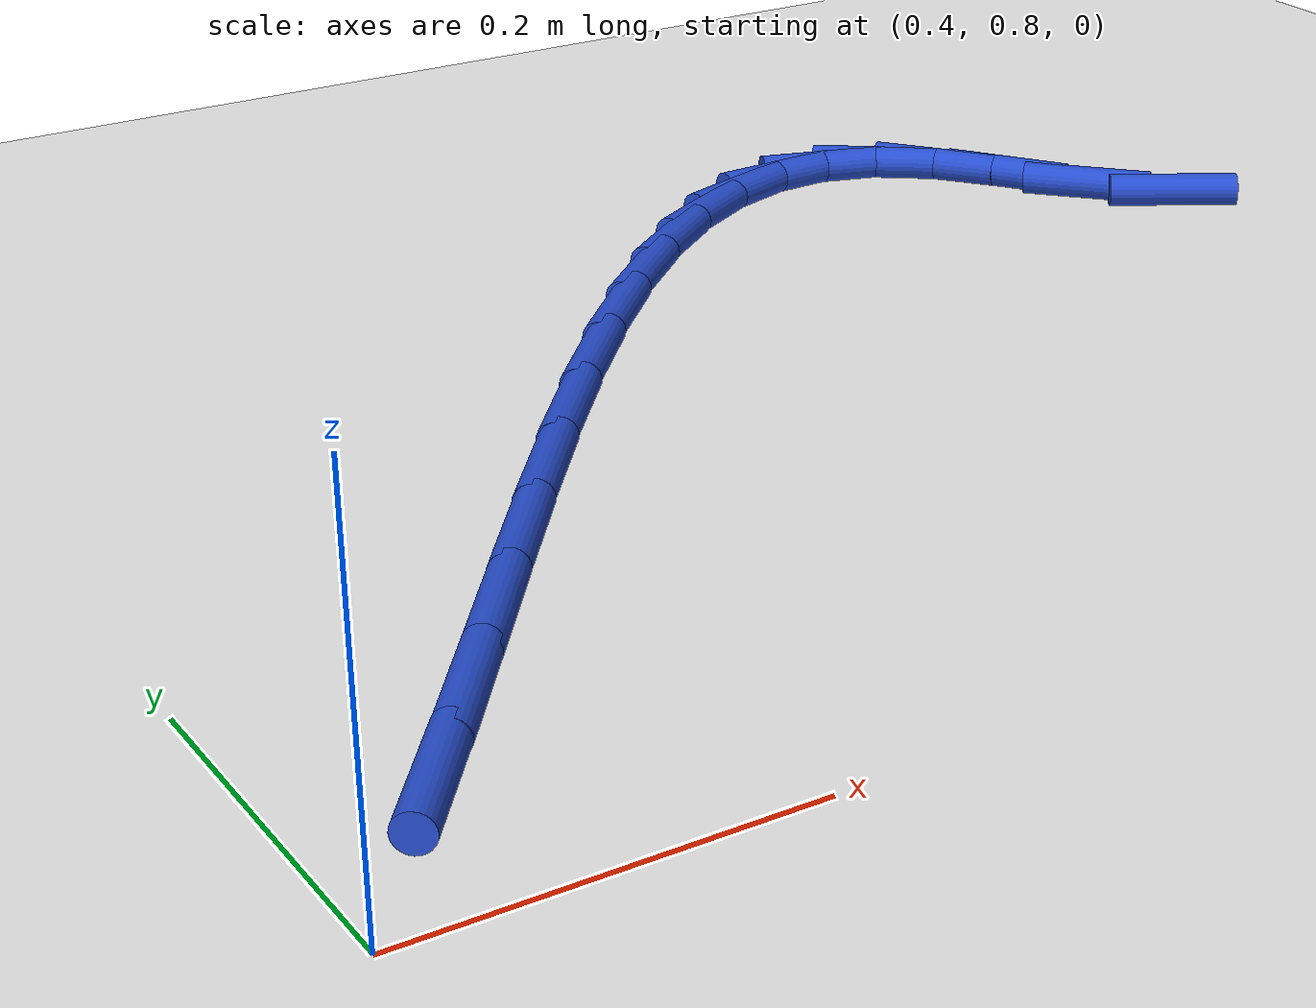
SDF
<sdf version="1.6">
 <world name="default">
  <model name="ground_plane">
   <static>1</static>
   <link name="link">
    <collision name="collision">
     <geometry><plane><normal>0 0 1</normal><size>100 100</size></plane></geometry>
     <surface><friction><ode><mu>100</mu><mu2>50</mu2></ode></friction></surface>
    </collision>
    <visual name="visual">
     <cast_shadows>0</cast_shadows>
     <geometry><plane><normal>0 0 1</normal><size>100 100</size></plane></geometry>
     <material>
      <script><uri>file://media/materials/scripts/gazebo.material</uri><name>Gazebo/WhiteGlow</name></script>
     </material>
    </visual>
   </link>
  </model>
  <model name="line">
   <link name="link_19">
    <pose>0.46492218971144633 0.8827234571510989 0.01 0 1.57 0.9239365346075642</pose>
    <collision name="collision">
     <geometry><cylinder><radius>0.01</radius><length>0.08</length></cylinder></geometry>
    </collision>
    <visual name="visual">
     <material>
      <script><name>Gazebo/Blue</name><uri>file://media/materials/scripts/gazebo.material</uri></script>
     </material>
     <geometry><cylinder><radius>0.01</radius><length>0.08</length></cylinder></geometry>
    </visual>
   </link>
   <link name="link_20">
    <pose>0.507810955171338 0.9395101219114486 0.01 0 1.57 0.932174153599378</pose>
    <collision name="collision">
     <geometry><cylinder><radius>0.01</radius><length>0.08</length></cylinder></geometry>
    </collision>
    <visual name="visual">
     <material>
      <script><name>Gazebo/Blue</name><uri>file://media/materials/scripts/gazebo.material</uri></script>
     </material>
     <geometry><cylinder><radius>0.01</radius><length>0.08</length></cylinder></geometry>
    </visual>
   </link>
   <link name="link_21">
    <pose>0.5513276226211673 0.9981259755392177 0.01 0 1.57 0.9330900064289085</pose>
    <collision name="collision">
     <geometry><cylinder><radius>0.01</radius><length>0.08</length></cylinder></geometry>
    </collision>
    <visual name="visual">
     <material>
      <script><name>Gazebo/Blue</name><uri>file://media/materials/scripts/gazebo.material</uri></script>
     </material>
     <geometry><cylinder><radius>0.01</radius><length>0.08</length></cylinder></geometry>
    </visual>
   </link>
   <link name="link_22">
    <pose>0.5952482342918994 1.057399278057417 0.01 0 1.57 0.9269539566968109</pose>
    <collision name="collision">
     <geometry><cylinder><radius>0.01</radius><length>0.08</length></cylinder></geometry>
    </collision>
    <visual name="visual">
     <material>
      <script><name>Gazebo/Blue</name><uri>file://media/materials/scripts/gazebo.material</uri></script>
     </material>
     <geometry><cylinder><radius>0.01</radius><length>0.08</length></cylinder></geometry>
    </visual>
   </link>
   <link name="link_23">
    <pose>0.6393488324145011 1.1161582894890594 0.01 0 1.57 0.9134040262255821</pose>
    <collision name="collision">
     <geometry><cylinder><radius>0.01</radius><length>0.08</length></cylinder></geometry>
    </collision>
    <visual name="visual">
     <material>
      <script><name>Gazebo/Blue</name><uri>file://media/materials/scripts/gazebo.material</uri></script>
     </material>
     <geometry><cylinder><radius>0.01</radius><length>0.08</length></cylinder></geometry>
    </visual>
   </link>
   <link name="link_24">
    <pose>0.6834054592199379 1.173231269857155 0.01 0 1.57 0.8913882123612406</pose>
    <collision name="collision">
     <geometry><cylinder><radius>0.01</radius><length>0.08</length></cylinder></geometry>
    </collision>
    <visual name="visual">
     <material>
      <script><name>Gazebo/Blue</name><uri>file://media/materials/scripts/gazebo.material</uri></script>
     </material>
     <geometry><cylinder><radius>0.01</radius><length>0.08</length></cylinder></geometry>
    </visual>
   </link>
   <link name="link_25">
    <pose>0.7271941569391759 1.2274464791847166 0.01 0 1.57 0.8589569287098184</pose>
    <collision name="collision">
     <geometry><cylinder><radius>0.01</radius><length>0.08</length></cylinder></geometry>
    </collision>
    <visual name="visual">
     <material>
      <script><name>Gazebo/Blue</name><uri>file://media/materials/scripts/gazebo.material</uri></script>
     </material>
     <geometry><cylinder><radius>0.01</radius><length>0.08</length></cylinder></geometry>
    </visual>
   </link>
   <link name="link_26">
    <pose>0.7704909678031808 1.2776321774947546 0.01 0 1.57 0.8128391091976263</pose>
    <collision name="collision">
     <geometry><cylinder><radius>0.01</radius><length>0.08</length></cylinder></geometry>
    </collision>
    <visual name="visual">
     <material>
      <script><name>Gazebo/Blue</name><uri>file://media/materials/scripts/gazebo.material</uri></script>
     </material>
     <geometry><cylinder><radius>0.01</radius><length>0.08</length></cylinder></geometry>
    </visual>
   </link>
   <link name="link_27">
    <pose>0.8130719340429191 1.3226166248102815 0.01 0 1.57 0.7476639512551123</pose>
    <collision name="collision">
     <geometry><cylinder><radius>0.01</radius><length>0.08</length></cylinder></geometry>
    </collision>
    <visual name="visual">
     <material>
      <script><name>Gazebo/Blue</name><uri>file://media/materials/scripts/gazebo.material</uri></script>
     </material>
     <geometry><cylinder><radius>0.01</radius><length>0.08</length></cylinder></geometry>
    </visual>
   </link>
   <link name="link_28">
    <pose>0.8547130978893562 1.3612280811543085 0.01 0 1.57 0.6546123008137925</pose>
    <collision name="collision">
     <geometry><cylinder><radius>0.01</radius><length>0.08</length></cylinder></geometry>
    </collision>
    <visual name="visual">
     <material>
      <script><name>Gazebo/Blue</name><uri>file://media/materials/scripts/gazebo.material</uri></script>
     </material>
     <geometry><cylinder><radius>0.01</radius><length>0.08</length></cylinder></geometry>
    </visual>
   </link>
   <link name="link_29">
    <pose>0.8951905015734587 1.3922948065498473 0.01 0 1.57 0.5194023976951444</pose>
    <collision name="collision">
     <geometry><cylinder><radius>0.01</radius><length>0.08</length></cylinder></geometry>
    </collision>
    <visual name="visual">
     <material>
      <script><name>Gazebo/Blue</name><uri>file://media/materials/scripts/gazebo.material</uri></script>
     </material>
     <geometry><cylinder><radius>0.01</radius><length>0.08</length></cylinder></geometry>
    </visual>
   </link>
   <link name="link_30">
    <pose>0.9342801873261919 1.4146450610199093 0.01 0 1.57 0.3210149081090921</pose>
    <collision name="collision">
     <geometry><cylinder><radius>0.01</radius><length>0.08</length></cylinder></geometry>
    </collision>
    <visual name="visual">
     <material>
      <script><name>Gazebo/Blue</name><uri>file://media/materials/scripts/gazebo.material</uri></script>
     </material>
     <geometry><cylinder><radius>0.01</radius><length>0.08</length></cylinder></geometry>
    </visual>
   </link>
   <link name="link_31">
    <pose>0.9717581973785224 1.4271071045875063 0.01 0 1.57 0.03931752774718461</pose>
    <collision name="collision">
     <geometry><cylinder><radius>0.01</radius><length>0.08</length></cylinder></geometry>
    </collision>
    <visual name="visual">
     <material>
      <script><name>Gazebo/Blue</name><uri>file://media/materials/scripts/gazebo.material</uri></script>
     </material>
     <geometry><cylinder><radius>0.01</radius><length>0.08</length></cylinder></geometry>
    </visual>
   </link>
   <link name="link_32">
    <pose>1.0074005739614154 1.4285091972756494 0.01 0 1.57 -0.3119461464083098</pose>
    <collision name="collision">
     <geometry><cylinder><radius>0.01</radius><length>0.08</length></cylinder></geometry>
    </collision>
    <visual name="visual">
     <material>
      <script><name>Gazebo/Blue</name><uri>file://media/materials/scripts/gazebo.material</uri></script>
     </material>
     <geometry><cylinder><radius>0.01</radius><length>0.08</length></cylinder></geometry>
    </visual>
   </link>
   <link name="link_33">
    <pose>1.0409833593058377 1.4176795991073508 0.01 0 1.57 -0.6588332465115055</pose>
    <collision name="collision">
     <geometry><cylinder><radius>0.01</radius><length>0.08</length></cylinder></geometry>
    </collision>
    <visual name="visual">
     <material>
      <script><name>Gazebo/Blue</name><uri>file://media/materials/scripts/gazebo.material</uri></script>
     </material>
     <geometry><cylinder><radius>0.01</radius><length>0.08</length></cylinder></geometry>
    </visual>
   </link>
   <link name="link_34">
    <pose>1.0722825956427549 1.3934465701056216 0.01 0 1.57 -0.9186454093857453</pose>
    <collision name="collision">
     <geometry><cylinder><radius>0.01</radius><length>0.08</length></cylinder></geometry>
    </collision>
    <visual name="visual">
     <material>
      <script><name>Gazebo/Blue</name><uri>file://media/materials/scripts/gazebo.material</uri></script>
     </material>
     <geometry><cylinder><radius>0.01</radius><length>0.08</length></cylinder></geometry>
    </visual>
   </link>
   <link name="link_35">
    <pose>1.1013827500937137 1.3553376058404263 0.01 0 1.57 -0.9775569772916918</pose>
    <collision name="collision">
     <geometry><cylinder><radius>0.01</radius><length>0.08</length></cylinder></geometry>
    </collision>
    <visual name="visual">
     <material>
      <script><name>Gazebo/Blue</name><uri>file://media/materials/scripts/gazebo.material</uri></script>
     </material>
     <geometry><cylinder><radius>0.01</radius><length>0.08</length></cylinder></geometry>
    </visual>
   </link>
   <link name="link_36">
    <pose>1.131684031639837 1.3103973791379775 0.01 0 1.57 -0.829667757174458</pose>
    <collision name="collision">
     <geometry><cylinder><radius>0.01</radius><length>0.08</length></cylinder></geometry>
    </collision>
    <visual name="visual">
     <material>
      <script><name>Gazebo/Blue</name><uri>file://media/materials/scripts/gazebo.material</uri></script>
     </material>
     <geometry><cylinder><radius>0.01</radius><length>0.08</length></cylinder></geometry>
    </visual>
   </link>
   <link name="link_37">
    <pose>1.1685401842341017 1.2701245244155892 0.01 0 1.57 -0.567876123459904</pose>
    <collision name="collision">
     <geometry><cylinder><radius>0.01</radius><length>0.08</length></cylinder></geometry>
    </collision>
    <visual name="visual">
     <material>
      <script><name>Gazebo/Blue</name><uri>file://media/materials/scripts/gazebo.material</uri></script>
     </material>
     <geometry><cylinder><radius>0.01</radius><length>0.08</length></cylinder></geometry>
    </visual>
   </link>
  </model>
 </world>
</sdf>
